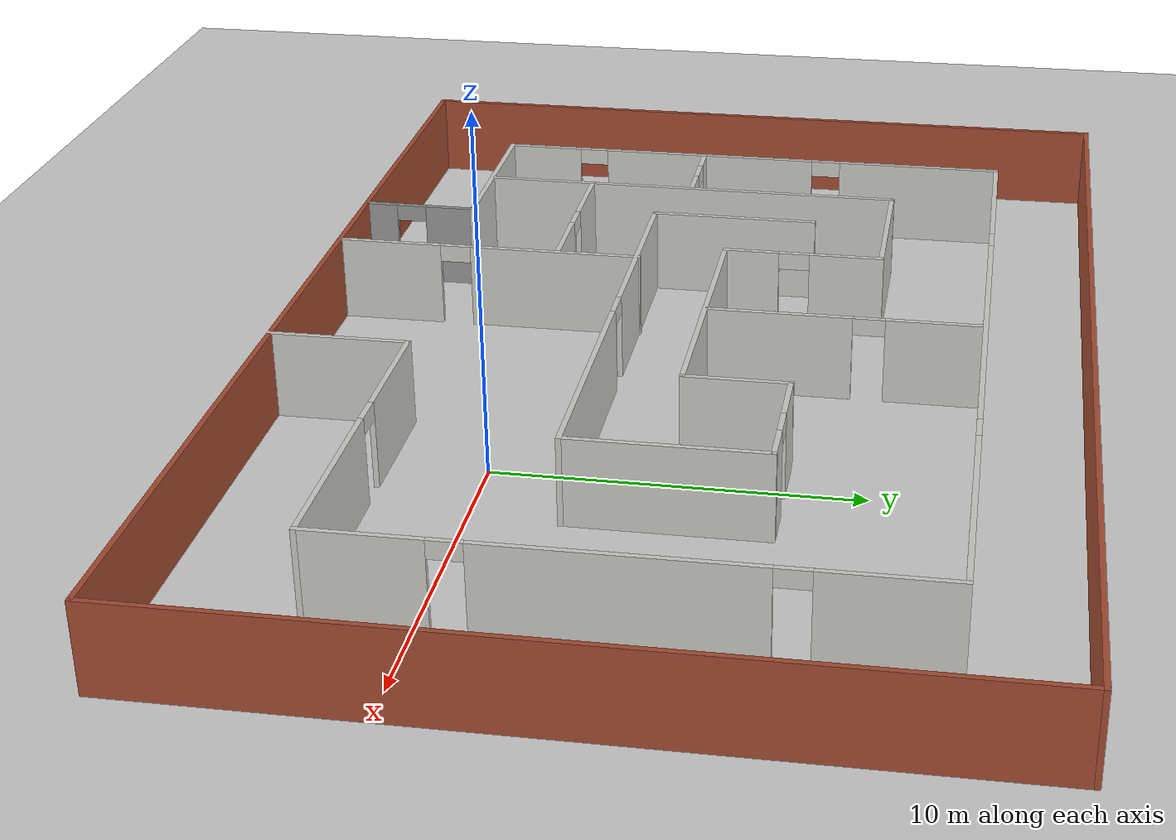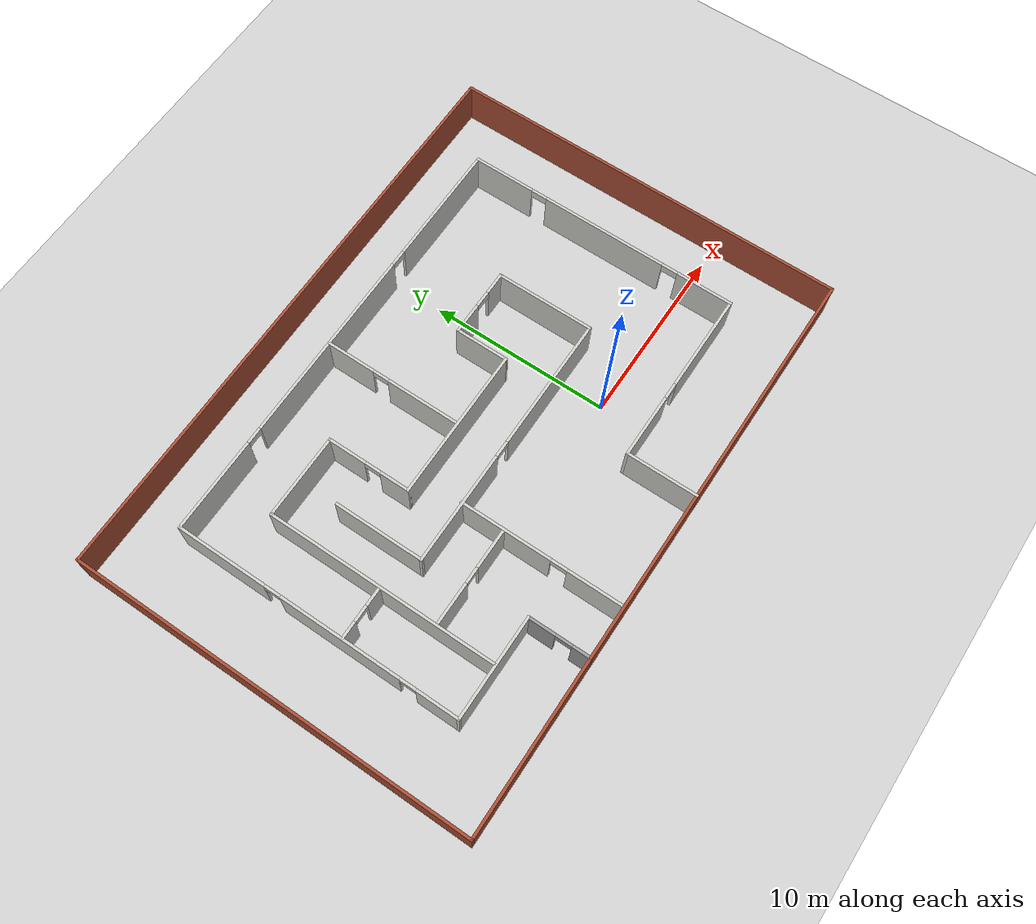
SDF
<sdf version="1.7">
 <world name="default">
  <light name="sun" type="directional">
   <pose>0 0 10 0 -0 0</pose>
   <diffuse>0.8 0.8 0.8 1</diffuse>
   <specular>0.2 0.2 0.2 1</specular>
   <attenuation>
    <range>1000</range>
    <constant>0.9</constant>
    <linear>0.01</linear>
    <quadratic>0.001</quadratic>
   </attenuation>
   <direction>-0.5 0.1 -0.9</direction>
   <spot><inner_angle>0</inner_angle><outer_angle>0</outer_angle><falloff>0</falloff></spot>
  </light>
  <model name="ground_plane">
   <static>1</static>
   <link name="link">
    <collision name="collision">
     <geometry><plane><normal>0 0 1</normal><size>100 100</size></plane></geometry>
     <surface><friction><ode><mu>100</mu><mu2>50</mu2></ode></friction></surface>
    </collision>
    <visual name="visual">
     <cast_shadows>0</cast_shadows>
     <geometry><plane><normal>0 0 1</normal><size>100 100</size></plane></geometry>
     <material>
      <script><uri>file://media/materials/scripts/gazebo.material</uri><name>Gazebo/Grey</name></script>
     </material>
    </visual>
   </link>
  </model>
  <gravity>0 0 -9.8</gravity>
  <magnetic_field>6e-06 2.3e-05 -4.2e-05</magnetic_field>
  <atmosphere type="adiabatic"/>
  <physics type="ode">
   <max_step_size>0.001</max_step_size>
   <real_time_factor>1</real_time_factor>
   <real_time_update_rate>1000</real_time_update_rate>
  </physics>
  <scene><ambient>0.4 0.4 0.4 1</ambient><background>0.7 0.7 0.7 1</background><shadows>1</shadows></scene>
  <audio><device>default</device></audio>
  <spherical_coordinates>
   <surface_model>EARTH_WGS84</surface_model>
   <latitude_deg>0</latitude_deg>
   <longitude_deg>0</longitude_deg>
   <elevation>0</elevation>
   <heading_deg>0</heading_deg>
  </spherical_coordinates>
  <model name="rooms">
   <pose>-5.06407 4.51768 0 0 -0 0</pose>
   <link name="Wall_0">
    <collision name="Wall_0_Collision">
     <geometry><box><size>23 0.15 2.5</size></box></geometry>
     <pose>0 0 1.25 0 -0 0</pose>
    </collision>
    <visual name="Wall_0_Visual">
     <pose>0 0 1.25 0 -0 0</pose>
     <geometry><box><size>23 0.15 2.5</size></box></geometry>
     <material>
      <script><uri>file://media/materials/scripts/gazebo.material</uri><name>Gazebo/Bricks</name></script>
      <ambient>1 1 1 1</ambient>
     </material>
     <meta><layer>0</layer></meta>
    </visual>
    <pose>4.75 -11.05 0 0 -0 0</pose>
   </link>
   <link name="Wall_1">
    <collision name="Wall_1_Collision">
     <geometry><box><size>22.25 0.15 2.5</size></box></geometry>
     <pose>0 0 1.25 0 -0 0</pose>
    </collision>
    <visual name="Wall_1_Visual">
     <pose>0 0 1.25 0 -0 0</pose>
     <geometry><box><size>22.25 0.15 2.5</size></box></geometry>
     <material>
      <script><uri>file://media/materials/scripts/gazebo.material</uri><name>Gazebo/Bricks</name></script>
      <ambient>1 1 1 1</ambient>
     </material>
     <meta><layer>0</layer></meta>
    </visual>
    <pose>16.175 0 0 0 -0 1.5708</pose>
   </link>
   <link name="Wall_10">
    <pose>7.65 -7.2 0 0 -0 3.14159</pose>
    <visual name="Wall_10_Visual_0">
     <pose>-2.25583 0 1.25 0 -0 0</pose>
     <geometry><box><size>5.48834 0.15 2.5</size></box></geometry>
     <material>
      <script><uri>file://media/materials/scripts/gazebo.material</uri><name>Gazebo/CeilingTiled</name></script>
      <ambient>1 1 1 1</ambient>
     </material>
     <meta><layer>0</layer></meta>
    </visual>
    <collision name="Wall_10_Collision_0">
     <geometry><box><size>5.48834 0.15 2.5</size></box></geometry>
     <pose>-2.25583 0 1.25 0 -0 0</pose>
    </collision>
    <visual name="Wall_10_Visual_1">
     <pose>3.19417 0 1.25 0 -0 0</pose>
     <geometry><box><size>3.61166 0.15 2.5</size></box></geometry>
     <material>
      <script><uri>file://media/materials/scripts/gazebo.material</uri><name>Gazebo/CeilingTiled</name></script>
      <ambient>1 1 1 1</ambient>
     </material>
     <meta><layer>0</layer></meta>
    </visual>
    <collision name="Wall_10_Collision_1">
     <geometry><box><size>3.61166 0.15 2.5</size></box></geometry>
     <pose>3.19417 0 1.25 0 -0 0</pose>
    </collision>
    <visual name="Wall_10_Visual_2">
     <pose>0.938337 0 2.25 0 -0 0</pose>
     <geometry><box><size>0.9 0.15 0.5</size></box></geometry>
     <material>
      <script><uri>file://media/materials/scripts/gazebo.material</uri><name>Gazebo/CeilingTiled</name></script>
      <ambient>1 1 1 1</ambient>
     </material>
     <meta><layer>0</layer></meta>
    </visual>
    <collision name="Wall_10_Collision_2">
     <geometry><box><size>0.9 0.15 0.5</size></box></geometry>
     <pose>0.938337 0 2.25 0 -0 0</pose>
    </collision>
   </link>
   <link name="Wall_11">
    <collision name="Wall_11_Collision">
     <geometry><box><size>4 0.15 2.5</size></box></geometry>
     <pose>0 0 1.25 0 -0 0</pose>
    </collision>
    <visual name="Wall_11_Visual">
     <pose>0 0 1.25 0 -0 0</pose>
     <geometry><box><size>4 0.15 2.5</size></box></geometry>
     <material>
      <script><uri>file://media/materials/scripts/gazebo.material</uri><name>Gazebo/CeilingTiled</name></script>
      <ambient>1 1 1 1</ambient>
     </material>
     <meta><layer>0</layer></meta>
    </visual>
    <pose>2.725 -9.125 0 0 -0 -1.5708</pose>
   </link>
   <link name="Wall_13">
    <collision name="Wall_13_Collision">
     <geometry><box><size>12.75 0.15 2.5</size></box></geometry>
     <pose>0 0 1.25 0 -0 0</pose>
    </collision>
    <visual name="Wall_13_Visual">
     <pose>0 0 1.25 0 -0 0</pose>
     <geometry><box><size>12.75 0.15 2.5</size></box></geometry>
     <material>
      <script><uri>file://media/materials/scripts/gazebo.material</uri><name>Gazebo/CeilingTiled</name></script>
      <ambient>1 1 1 1</ambient>
     </material>
     <meta><layer>0</layer></meta>
    </visual>
    <pose>-9.34711 -1.29684 0 0 -0 1.5708</pose>
   </link>
   <link name="Wall_17">
    <pose>-10.8415 -1.29175 0 0 -0 3.14159</pose>
    <visual name="Wall_17_Visual_0">
     <pose>-0.968221 0 1.25 0 -0 0</pose>
     <geometry><box><size>1.06356 0.15 2.5</size></box></geometry>
     <material>
      <script><uri>file://media/materials/scripts/gazebo.material</uri><name>Gazebo/CeilingTiled</name></script>
      <ambient>1 1 1 1</ambient>
     </material>
     <meta><layer>0</layer></meta>
    </visual>
    <collision name="Wall_17_Collision_0">
     <geometry><box><size>1.06356 0.15 2.5</size></box></geometry>
     <pose>-0.968221 0 1.25 0 -0 0</pose>
    </collision>
    <visual name="Wall_17_Visual_1">
     <pose>0.981779 0 1.25 0 -0 0</pose>
     <geometry><box><size>1.03644 0.15 2.5</size></box></geometry>
     <material>
      <script><uri>file://media/materials/scripts/gazebo.material</uri><name>Gazebo/CeilingTiled</name></script>
      <ambient>1 1 1 1</ambient>
     </material>
     <meta><layer>0</layer></meta>
    </visual>
    <collision name="Wall_17_Collision_1">
     <geometry><box><size>1.03644 0.15 2.5</size></box></geometry>
     <pose>0.981779 0 1.25 0 -0 0</pose>
    </collision>
    <visual name="Wall_17_Visual_2">
     <pose>0.013558 0 2.25 0 -0 0</pose>
     <geometry><box><size>0.9 0.15 0.5</size></box></geometry>
     <material>
      <script><uri>file://media/materials/scripts/gazebo.material</uri><name>Gazebo/CeilingTiled</name></script>
      <ambient>1 1 1 1</ambient>
     </material>
     <meta><layer>0</layer></meta>
    </visual>
    <collision name="Wall_17_Collision_2">
     <geometry><box><size>0.9 0.15 0.5</size></box></geometry>
     <pose>0.013558 0 2.25 0 -0 0</pose>
    </collision>
   </link>
   <link name="Wall_19">
    <collision name="Wall_19_Collision">
     <geometry><box><size>4.75 0.15 2.5</size></box></geometry>
     <pose>0 0 1.25 0 -0 0</pose>
    </collision>
    <visual name="Wall_19_Visual">
     <pose>0 0 1.25 0 -0 0</pose>
     <geometry><box><size>4.75 0.15 2.5</size></box></geometry>
     <material>
      <script><uri>file://media/materials/scripts/gazebo.material</uri><name>Gazebo/CeilingTiled</name></script>
      <ambient>1 1 1 1</ambient>
     </material>
     <meta><layer>0</layer></meta>
    </visual>
    <pose>-7.04711 5.00316 0 0 -0 0</pose>
   </link>
   <link name="Wall_2">
    <collision name="Wall_2_Collision">
     <geometry><box><size>32.5 0.15 2.5</size></box></geometry>
     <pose>0 0 1.25 0 -0 0</pose>
    </collision>
    <visual name="Wall_2_Visual">
     <pose>0 0 1.25 0 -0 0</pose>
     <geometry><box><size>32.5 0.15 2.5</size></box></geometry>
     <material>
      <script><uri>file://media/materials/scripts/gazebo.material</uri><name>Gazebo/Bricks</name></script>
      <ambient>1 1 1 1</ambient>
     </material>
     <meta><layer>0</layer></meta>
    </visual>
    <pose>0 11.05 0 0 -0 3.14159</pose>
   </link>
   <link name="Wall_20">
    <pose>-4.74711 2.70316 0 0 -0 -1.5708</pose>
    <visual name="Wall_20_Visual_0">
     <pose>-1.28547 0 1.25 0 -0 0</pose>
     <geometry><box><size>2.17906 0.15 2.5</size></box></geometry>
     <material>
      <script><uri>file://media/materials/scripts/gazebo.material</uri><name>Gazebo/CeilingTiled</name></script>
      <ambient>1 1 1 1</ambient>
     </material>
     <meta><layer>0</layer></meta>
    </visual>
    <collision name="Wall_20_Collision_0">
     <geometry><box><size>2.17906 0.15 2.5</size></box></geometry>
     <pose>-1.28547 0 1.25 0 -0 0</pose>
    </collision>
    <visual name="Wall_20_Visual_1">
     <pose>1.53953 0 1.25 0 -0 0</pose>
     <geometry><box><size>1.67094 0.15 2.5</size></box></geometry>
     <material>
      <script><uri>file://media/materials/scripts/gazebo.material</uri><name>Gazebo/CeilingTiled</name></script>
      <ambient>1 1 1 1</ambient>
     </material>
     <meta><layer>0</layer></meta>
    </visual>
    <collision name="Wall_20_Collision_1">
     <geometry><box><size>1.67094 0.15 2.5</size></box></geometry>
     <pose>1.53953 0 1.25 0 -0 0</pose>
    </collision>
    <visual name="Wall_20_Visual_2">
     <pose>0.254063 0 2.25 0 -0 0</pose>
     <geometry><box><size>0.9 0.15 0.5</size></box></geometry>
     <material>
      <script><uri>file://media/materials/scripts/gazebo.material</uri><name>Gazebo/CeilingTiled</name></script>
      <ambient>1 1 1 1</ambient>
     </material>
     <meta><layer>0</layer></meta>
    </visual>
    <collision name="Wall_20_Collision_2">
     <geometry><box><size>0.9 0.15 0.5</size></box></geometry>
     <pose>0.254063 0 2.25 0 -0 0</pose>
    </collision>
   </link>
   <link name="Wall_21">
    <collision name="Wall_21_Collision">
     <geometry><box><size>8.5 0.15 2.5</size></box></geometry>
     <pose>0 0 1.25 0 -0 0</pose>
    </collision>
    <visual name="Wall_21_Visual">
     <pose>0 0 1.25 0 -0 0</pose>
     <geometry><box><size>8.5 0.15 2.5</size></box></geometry>
     <material>
      <script><uri>file://media/materials/scripts/gazebo.material</uri><name>Gazebo/CeilingTiled</name></script>
      <ambient>1 1 1 1</ambient>
     </material>
     <meta><layer>0</layer></meta>
    </visual>
    <pose>-0.572112 0.40316 0 0 -0 0</pose>
   </link>
   <link name="Wall_24">
    <collision name="Wall_24_Collision">
     <geometry><box><size>3 0.15 2.5</size></box></geometry>
     <pose>0 0 1.25 0 -0 0</pose>
    </collision>
    <visual name="Wall_24_Visual">
     <pose>0 0 1.25 0 -0 0</pose>
     <geometry><box><size>3 0.15 2.5</size></box></geometry>
     <material>
      <script><uri>file://media/materials/scripts/gazebo.material</uri><name>Gazebo/CeilingTiled</name></script>
      <ambient>1 1 1 1</ambient>
     </material>
     <meta><layer>0</layer></meta>
    </visual>
    <pose>3.60289 1.82816 0 0 -0 1.5708</pose>
   </link>
   <link name="Wall_25">
    <pose>5.50109 3.25316 0 0 -0 0</pose>
    <visual name="Wall_25_Visual_0">
     <pose>-1.08978 0 1.25 0 -0 0</pose>
     <geometry><box><size>1.76684 0.15 2.5</size></box></geometry>
     <material>
      <script><uri>file://media/materials/scripts/gazebo.material</uri><name>Gazebo/CeilingTiled</name></script>
      <ambient>1 1 1 1</ambient>
     </material>
     <meta><layer>0</layer></meta>
    </visual>
    <collision name="Wall_25_Collision_0">
     <geometry><box><size>1.76684 0.15 2.5</size></box></geometry>
     <pose>-1.08978 0 1.25 0 -0 0</pose>
    </collision>
    <visual name="Wall_25_Visual_1">
     <pose>1.33342 0 1.25 0 -0 0</pose>
     <geometry><box><size>1.27955 0.15 2.5</size></box></geometry>
     <material>
      <script><uri>file://media/materials/scripts/gazebo.material</uri><name>Gazebo/CeilingTiled</name></script>
      <ambient>1 1 1 1</ambient>
     </material>
     <meta><layer>0</layer></meta>
    </visual>
    <collision name="Wall_25_Collision_1">
     <geometry><box><size>1.27955 0.15 2.5</size></box></geometry>
     <pose>1.33342 0 1.25 0 -0 0</pose>
    </collision>
    <visual name="Wall_25_Visual_2">
     <pose>0.243644 0 2.25 0 -0 0</pose>
     <geometry><box><size>0.9 0.15 0.5</size></box></geometry>
     <material>
      <script><uri>file://media/materials/scripts/gazebo.material</uri><name>Gazebo/CeilingTiled</name></script>
      <ambient>1 1 1 1</ambient>
     </material>
     <meta><layer>0</layer></meta>
    </visual>
    <collision name="Wall_25_Collision_2">
     <geometry><box><size>0.9 0.15 0.5</size></box></geometry>
     <pose>0.243644 0 2.25 0 -0 0</pose>
    </collision>
   </link>
   <link name="Wall_3">
    <collision name="Wall_3_Collision">
     <geometry><box><size>22.25 0.15 2.5</size></box></geometry>
     <pose>0 0 1.25 0 -0 0</pose>
    </collision>
    <visual name="Wall_3_Visual">
     <pose>0 0 1.25 0 -0 0</pose>
     <geometry><box><size>22.25 0.15 2.5</size></box></geometry>
     <material>
      <script><uri>file://media/materials/scripts/gazebo.material</uri><name>Gazebo/Bricks</name></script>
      <ambient>1 1 1 1</ambient>
     </material>
     <meta><layer>0</layer></meta>
    </visual>
    <pose>-16.175 0 0 0 -0 -1.5708</pose>
   </link>
   <link name="Wall_32">
    <collision name="Wall_32_Collision">
     <geometry><box><size>5.5 0.15 2.5</size></box></geometry>
     <pose>0 0 1.25 0 -0 0</pose>
    </collision>
    <visual name="Wall_32_Visual">
     <pose>0 0 1.25 0 -0 0</pose>
     <geometry><box><size>5.5 0.15 2.5</size></box></geometry>
     <material>
      <script><uri>file://media/materials/scripts/gazebo.material</uri><name>Gazebo/CeilingTiled</name></script>
      <ambient>1 1 1 1</ambient>
     </material>
     <meta><layer>0</layer></meta>
    </visual>
    <pose>7.39929 0.578161 0 0 -0 -1.5708</pose>
   </link>
   <link name="Wall_33">
    <pose>0.099286 -2.09684 0 0 -0 3.14159</pose>
    <visual name="Wall_33_Visual_0">
     <pose>-3.61755 0 1.25 0 -0 0</pose>
     <geometry><box><size>7.51489 0.15 2.5</size></box></geometry>
     <material>
      <script><uri>file://media/materials/scripts/gazebo.material</uri><name>Gazebo/CeilingTiled</name></script>
      <ambient>1 1 1 1</ambient>
     </material>
     <meta><layer>0</layer></meta>
    </visual>
    <collision name="Wall_33_Collision_0">
     <geometry><box><size>7.51489 0.15 2.5</size></box></geometry>
     <pose>-3.61755 0 1.25 0 -0 0</pose>
    </collision>
    <visual name="Wall_33_Visual_1">
     <pose>4.20744 0 1.25 0 -0 0</pose>
     <geometry><box><size>6.33511 0.15 2.5</size></box></geometry>
     <material>
      <script><uri>file://media/materials/scripts/gazebo.material</uri><name>Gazebo/CeilingTiled</name></script>
      <ambient>1 1 1 1</ambient>
     </material>
     <meta><layer>0</layer></meta>
    </visual>
    <collision name="Wall_33_Collision_1">
     <geometry><box><size>6.33511 0.15 2.5</size></box></geometry>
     <pose>4.20744 0 1.25 0 -0 0</pose>
    </collision>
    <visual name="Wall_33_Visual_2">
     <pose>0.58989 0 2.25 0 -0 0</pose>
     <geometry><box><size>0.9 0.15 0.5</size></box></geometry>
     <material>
      <script><uri>file://media/materials/scripts/gazebo.material</uri><name>Gazebo/CeilingTiled</name></script>
      <ambient>1 1 1 1</ambient>
     </material>
     <meta><layer>0</layer></meta>
    </visual>
    <collision name="Wall_33_Collision_2">
     <geometry><box><size>0.9 0.15 0.5</size></box></geometry>
     <pose>0.58989 0 2.25 0 -0 0</pose>
    </collision>
   </link>
   <link name="Wall_34">
    <collision name="Wall_34_Collision">
     <geometry><box><size>5 0.15 2.5</size></box></geometry>
     <pose>0 0 1.25 0 -0 0</pose>
    </collision>
    <visual name="Wall_34_Visual">
     <pose>0 0 1.25 0 -0 0</pose>
     <geometry><box><size>5 0.15 2.5</size></box></geometry>
     <material>
      <script><uri>file://media/materials/scripts/gazebo.material</uri><name>Gazebo/CeilingTiled</name></script>
      <ambient>1 1 1 1</ambient>
     </material>
     <meta><layer>0</layer></meta>
    </visual>
    <pose>-7.20071 0.328161 0 0 -0 1.5708</pose>
   </link>
   <link name="Wall_37">
    <pose>-3.81311 -6.47974 0 0 -0 -1.5708</pose>
    <visual name="Wall_37_Visual_0">
     <pose>-1.95566 0 1.25 0 -0 0</pose>
     <geometry><box><size>5.08868 0.15 2.5</size></box></geometry>
     <material>
      <script><uri>file://media/materials/scripts/gazebo.material</uri><name>Gazebo/CeilingTiled</name></script>
      <ambient>1 1 1 1</ambient>
     </material>
     <meta><layer>0</layer></meta>
    </visual>
    <collision name="Wall_37_Collision_0">
     <geometry><box><size>5.08868 0.15 2.5</size></box></geometry>
     <pose>-1.95566 0 1.25 0 -0 0</pose>
    </collision>
    <visual name="Wall_37_Visual_1">
     <pose>2.99434 0 1.25 0 -0 0</pose>
     <geometry><box><size>3.01132 0.15 2.5</size></box></geometry>
     <material>
      <script><uri>file://media/materials/scripts/gazebo.material</uri><name>Gazebo/CeilingTiled</name></script>
      <ambient>1 1 1 1</ambient>
     </material>
     <meta><layer>0</layer></meta>
    </visual>
    <collision name="Wall_37_Collision_1">
     <geometry><box><size>3.01132 0.15 2.5</size></box></geometry>
     <pose>2.99434 0 1.25 0 -0 0</pose>
    </collision>
    <visual name="Wall_37_Visual_2">
     <pose>1.03868 0 2.25 0 -0 0</pose>
     <geometry><box><size>0.9 0.15 0.5</size></box></geometry>
     <material>
      <script><uri>file://media/materials/scripts/gazebo.material</uri><name>Gazebo/CeilingTiled</name></script>
      <ambient>1 1 1 1</ambient>
     </material>
     <meta><layer>0</layer></meta>
    </visual>
    <collision name="Wall_37_Collision_2">
     <geometry><box><size>0.9 0.15 0.5</size></box></geometry>
     <pose>1.03868 0 2.25 0 -0 0</pose>
    </collision>
   </link>
   <link name="Wall_39">
    <pose>-6.60178 -4.45433 0 0 -0 0</pose>
    <visual name="Wall_39_Visual_0">
     <pose>-1.55312 0 1.25 0 -0 0</pose>
     <geometry><box><size>2.39376 0.15 2.5</size></box></geometry>
     <material>
      <script><uri>file://media/materials/scripts/gazebo.material</uri><name>Gazebo/CeilingTiled</name></script>
      <ambient>1 1 1 1</ambient>
     </material>
     <meta><layer>0</layer></meta>
    </visual>
    <collision name="Wall_39_Collision_0">
     <geometry><box><size>2.39376 0.15 2.5</size></box></geometry>
     <pose>-1.55312 0 1.25 0 -0 0</pose>
    </collision>
    <visual name="Wall_39_Visual_1">
     <pose>1.64688 0 1.25 0 -0 0</pose>
     <geometry><box><size>2.20625 0.15 2.5</size></box></geometry>
     <material>
      <script><uri>file://media/materials/scripts/gazebo.material</uri><name>Gazebo/CeilingTiled</name></script>
      <ambient>1 1 1 1</ambient>
     </material>
     <meta><layer>0</layer></meta>
    </visual>
    <collision name="Wall_39_Collision_1">
     <geometry><box><size>2.20625 0.15 2.5</size></box></geometry>
     <pose>1.64688 0 1.25 0 -0 0</pose>
    </collision>
    <visual name="Wall_39_Visual_2">
     <pose>0.093755 0 2.25 0 -0 0</pose>
     <geometry><box><size>0.9 0.15 0.5</size></box></geometry>
     <material>
      <script><uri>file://media/materials/scripts/gazebo.material</uri><name>Gazebo/CeilingTiled</name></script>
      <ambient>1 1 1 1</ambient>
     </material>
     <meta><layer>0</layer></meta>
    </visual>
    <collision name="Wall_39_Collision_2">
     <geometry><box><size>0.9 0.15 0.5</size></box></geometry>
     <pose>0.093755 0 2.25 0 -0 0</pose>
    </collision>
   </link>
   <link name="Wall_4">
    <collision name="Wall_4_Collision">
     <geometry><box><size>9.65 0.15 2.5</size></box></geometry>
     <pose>0 0 1.25 0 -0 0</pose>
    </collision>
    <visual name="Wall_4_Visual">
     <pose>0 0 1.25 0 -0 0</pose>
     <geometry><box><size>9.65 0.15 2.5</size></box></geometry>
     <material>
      <script><uri>file://media/materials/scripts/gazebo.material</uri><name>Gazebo/Bricks</name></script>
      <ambient>1 1 1 1</ambient>
     </material>
     <meta><layer>0</layer></meta>
    </visual>
    <pose>-11.425 -11.05 0 0 -0 0</pose>
   </link>
   <link name="Wall_43">
    <pose>-0.595834 4.29177 0 0 -0 1.5708</pose>
    <visual name="Wall_43_Visual_0">
     <pose>-1.82741 0 1.25 0 -0 0</pose>
     <geometry><box><size>4.09519 0.15 2.5</size></box></geometry>
     <material>
      <script><uri>file://media/materials/scripts/gazebo.material</uri><name>Gazebo/CeilingTiled</name></script>
      <ambient>1 1 1 1</ambient>
     </material>
     <meta><layer>0</layer></meta>
    </visual>
    <collision name="Wall_43_Collision_0">
     <geometry><box><size>4.09519 0.15 2.5</size></box></geometry>
     <pose>-1.82741 0 1.25 0 -0 0</pose>
    </collision>
    <visual name="Wall_43_Visual_1">
     <pose>2.49759 0 1.25 0 -0 0</pose>
     <geometry><box><size>2.75481 0.15 2.5</size></box></geometry>
     <material>
      <script><uri>file://media/materials/scripts/gazebo.material</uri><name>Gazebo/CeilingTiled</name></script>
      <ambient>1 1 1 1</ambient>
     </material>
     <meta><layer>0</layer></meta>
    </visual>
    <collision name="Wall_43_Collision_1">
     <geometry><box><size>2.75481 0.15 2.5</size></box></geometry>
     <pose>2.49759 0 1.25 0 -0 0</pose>
    </collision>
    <visual name="Wall_43_Visual_2">
     <pose>0.670186 0 2.25 0 -0 0</pose>
     <geometry><box><size>0.9 0.15 0.5</size></box></geometry>
     <material>
      <script><uri>file://media/materials/scripts/gazebo.material</uri><name>Gazebo/CeilingTiled</name></script>
      <ambient>1 1 1 1</ambient>
     </material>
     <meta><layer>0</layer></meta>
    </visual>
    <collision name="Wall_43_Collision_2">
     <geometry><box><size>0.9 0.15 0.5</size></box></geometry>
     <pose>0.670186 0 2.25 0 -0 0</pose>
    </collision>
   </link>
   <link name="Wall_5">
    <pose>-6.675 -9.375 0 0 -0 1.5708</pose>
    <visual name="Wall_5_Visual_0">
     <pose>-1.22613 0 1.25 0 -0 0</pose>
     <geometry><box><size>1.04774 0.15 2.5</size></box></geometry>
     <material>
      <script><uri>file://media/materials/scripts/gazebo.material</uri><name>Gazebo/Grey</name></script>
      <ambient>1 1 1 1</ambient>
     </material>
     <meta><layer>0</layer></meta>
    </visual>
    <collision name="Wall_5_Collision_0">
     <geometry><box><size>1.04774 0.15 2.5</size></box></geometry>
     <pose>-1.22613 0 1.25 0 -0 0</pose>
    </collision>
    <visual name="Wall_5_Visual_1">
     <pose>0.97387 0 1.25 0 -0 0</pose>
     <geometry><box><size>1.55226 0.15 2.5</size></box></geometry>
     <material>
      <script><uri>file://media/materials/scripts/gazebo.material</uri><name>Gazebo/Grey</name></script>
      <ambient>1 1 1 1</ambient>
     </material>
     <meta><layer>0</layer></meta>
    </visual>
    <collision name="Wall_5_Collision_1">
     <geometry><box><size>1.55226 0.15 2.5</size></box></geometry>
     <pose>0.97387 0 1.25 0 -0 0</pose>
    </collision>
    <visual name="Wall_5_Visual_2">
     <pose>-0.25226 0 2.25 0 -0 0</pose>
     <geometry><box><size>0.9 0.15 0.5</size></box></geometry>
     <material>
      <script><uri>file://media/materials/scripts/gazebo.material</uri><name>Gazebo/Grey</name></script>
      <ambient>1 1 1 1</ambient>
     </material>
     <meta><layer>0</layer></meta>
    </visual>
    <collision name="Wall_5_Collision_2">
     <geometry><box><size>0.9 0.15 0.5</size></box></geometry>
     <pose>-0.25226 0 2.25 0 -0 0</pose>
    </collision>
   </link>
   <link name="Wall_6">
    <collision name="Wall_6_Collision">
     <geometry><box><size>5.75 0.15 2.5</size></box></geometry>
     <pose>0 0 1.25 0 -0 0</pose>
    </collision>
    <visual name="Wall_6_Visual">
     <pose>0 0 1.25 0 -0 0</pose>
     <geometry><box><size>5.75 0.15 2.5</size></box></geometry>
     <material>
      <script><uri>file://media/materials/scripts/gazebo.material</uri><name>Gazebo/CeilingTiled</name></script>
      <ambient>1 1 1 1</ambient>
     </material>
     <meta><layer>0</layer></meta>
    </visual>
    <pose>-9.475 -7.7 0 0 -0 3.14159</pose>
   </link>
   <link name="Wall_7">
    <pose>-12.275 0.225001 0 0 -0 1.5708</pose>
    <visual name="Wall_7_Visual_0">
     <pose>-6.81307 0 1.25 0 -0 0</pose>
     <geometry><box><size>2.37386 0.15 2.5</size></box></geometry>
     <material>
      <script><uri>file://media/materials/scripts/gazebo.material</uri><name>Gazebo/CeilingTiled</name></script>
      <ambient>1 1 1 1</ambient>
     </material>
     <meta><layer>0</layer></meta>
    </visual>
    <collision name="Wall_7_Collision_0">
     <geometry><box><size>2.37386 0.15 2.5</size></box></geometry>
     <pose>-6.81307 0 1.25 0 -0 0</pose>
    </collision>
    <visual name="Wall_7_Visual_1">
     <pose>-1.36141 0 1.25 0 -0 0</pose>
     <geometry><box><size>6.72946 0.15 2.5</size></box></geometry>
     <material>
      <script><uri>file://media/materials/scripts/gazebo.material</uri><name>Gazebo/CeilingTiled</name></script>
      <ambient>1 1 1 1</ambient>
     </material>
     <meta><layer>0</layer></meta>
    </visual>
    <collision name="Wall_7_Collision_1">
     <geometry><box><size>6.72946 0.15 2.5</size></box></geometry>
     <pose>-1.36141 0 1.25 0 -0 0</pose>
    </collision>
    <visual name="Wall_7_Visual_2">
     <pose>5.45166 0 1.25 0 -0 0</pose>
     <geometry><box><size>5.09668 0.15 2.5</size></box></geometry>
     <material>
      <script><uri>file://media/materials/scripts/gazebo.material</uri><name>Gazebo/CeilingTiled</name></script>
      <ambient>1 1 1 1</ambient>
     </material>
     <meta><layer>0</layer></meta>
    </visual>
    <collision name="Wall_7_Collision_2">
     <geometry><box><size>5.09668 0.15 2.5</size></box></geometry>
     <pose>5.45166 0 1.25 0 -0 0</pose>
    </collision>
    <visual name="Wall_7_Visual_3">
     <pose>-5.17614 0 2.25 0 -0 0</pose>
     <geometry><box><size>0.9 0.15 0.5</size></box></geometry>
     <material>
      <script><uri>file://media/materials/scripts/gazebo.material</uri><name>Gazebo/CeilingTiled</name></script>
      <ambient>1 1 1 1</ambient>
     </material>
     <meta><layer>0</layer></meta>
    </visual>
    <collision name="Wall_7_Collision_3">
     <geometry><box><size>0.9 0.15 0.5</size></box></geometry>
     <pose>-5.17614 0 2.25 0 -0 0</pose>
    </collision>
    <visual name="Wall_7_Visual_4">
     <pose>2.45331 0 2.25 0 -0 0</pose>
     <geometry><box><size>0.9 0.15 0.5</size></box></geometry>
     <material>
      <script><uri>file://media/materials/scripts/gazebo.material</uri><name>Gazebo/CeilingTiled</name></script>
      <ambient>1 1 1 1</ambient>
     </material>
     <meta><layer>0</layer></meta>
    </visual>
    <collision name="Wall_7_Collision_4">
     <geometry><box><size>0.9 0.15 0.5</size></box></geometry>
     <pose>2.45331 0 2.25 0 -0 0</pose>
    </collision>
   </link>
   <link name="Wall_8">
    <pose>0.15 8.15 0 0 -0 0</pose>
    <visual name="Wall_8_Visual_0">
     <pose>-9.86994 0 1.25 0 -0 0</pose>
     <geometry><box><size>5.26011 0.15 2.5</size></box></geometry>
     <material>
      <script><uri>file://media/materials/scripts/gazebo.material</uri><name>Gazebo/CeilingTiled</name></script>
      <ambient>1 1 1 1</ambient>
     </material>
     <meta><layer>0</layer></meta>
    </visual>
    <collision name="Wall_8_Collision_0">
     <geometry><box><size>5.26011 0.15 2.5</size></box></geometry>
     <pose>-9.86994 0 1.25 0 -0 0</pose>
    </collision>
    <visual name="Wall_8_Visual_1">
     <pose>-0.821682 0 1.25 0 -0 0</pose>
     <geometry><box><size>11.0364 0.15 2.5</size></box></geometry>
     <material>
      <script><uri>file://media/materials/scripts/gazebo.material</uri><name>Gazebo/CeilingTiled</name></script>
      <ambient>1 1 1 1</ambient>
     </material>
     <meta><layer>0</layer></meta>
    </visual>
    <collision name="Wall_8_Collision_1">
     <geometry><box><size>11.0364 0.15 2.5</size></box></geometry>
     <pose>-0.821682 0 1.25 0 -0 0</pose>
    </collision>
    <visual name="Wall_8_Visual_2">
     <pose>9.04826 0 1.25 0 -0 0</pose>
     <geometry><box><size>6.90348 0.15 2.5</size></box></geometry>
     <material>
      <script><uri>file://media/materials/scripts/gazebo.material</uri><name>Gazebo/CeilingTiled</name></script>
      <ambient>1 1 1 1</ambient>
     </material>
     <meta><layer>0</layer></meta>
    </visual>
    <collision name="Wall_8_Collision_2">
     <geometry><box><size>6.90348 0.15 2.5</size></box></geometry>
     <pose>9.04826 0 1.25 0 -0 0</pose>
    </collision>
    <visual name="Wall_8_Visual_3">
     <pose>-6.78989 0 2.25 0 -0 0</pose>
     <geometry><box><size>0.9 0.15 0.5</size></box></geometry>
     <material>
      <script><uri>file://media/materials/scripts/gazebo.material</uri><name>Gazebo/CeilingTiled</name></script>
      <ambient>1 1 1 1</ambient>
     </material>
     <meta><layer>0</layer></meta>
    </visual>
    <collision name="Wall_8_Collision_3">
     <geometry><box><size>0.9 0.15 0.5</size></box></geometry>
     <pose>-6.78989 0 2.25 0 -0 0</pose>
    </collision>
    <visual name="Wall_8_Visual_4">
     <pose>5.14652 0 2.25 0 -0 0</pose>
     <geometry><box><size>0.9 0.15 0.5</size></box></geometry>
     <material>
      <script><uri>file://media/materials/scripts/gazebo.material</uri><name>Gazebo/CeilingTiled</name></script>
      <ambient>1 1 1 1</ambient>
     </material>
     <meta><layer>0</layer></meta>
    </visual>
    <collision name="Wall_8_Collision_4">
     <geometry><box><size>0.9 0.15 0.5</size></box></geometry>
     <pose>5.14652 0 2.25 0 -0 0</pose>
    </collision>
   </link>
   <link name="Wall_9">
    <pose>12.575 0.475001 0 0 -0 -1.5708</pose>
    <visual name="Wall_9_Visual_0">
     <pose>-6.00152 0 1.25 0 -0 0</pose>
     <geometry><box><size>3.49696 0.15 2.5</size></box></geometry>
     <material>
      <script><uri>file://media/materials/scripts/gazebo.material</uri><name>Gazebo/CeilingTiled</name></script>
      <ambient>1 1 1 1</ambient>
     </material>
     <meta><layer>0</layer></meta>
    </visual>
    <collision name="Wall_9_Collision_0">
     <geometry><box><size>3.49696 0.15 2.5</size></box></geometry>
     <pose>-6.00152 0 1.25 0 -0 0</pose>
    </collision>
    <visual name="Wall_9_Visual_1">
     <pose>0.165508 0 1.25 0 -0 0</pose>
     <geometry><box><size>7.0371 0.15 2.5</size></box></geometry>
     <material>
      <script><uri>file://media/materials/scripts/gazebo.material</uri><name>Gazebo/CeilingTiled</name></script>
      <ambient>1 1 1 1</ambient>
     </material>
     <meta><layer>0</layer></meta>
    </visual>
    <collision name="Wall_9_Collision_1">
     <geometry><box><size>7.0371 0.15 2.5</size></box></geometry>
     <pose>0.165508 0 1.25 0 -0 0</pose>
    </collision>
    <visual name="Wall_9_Visual_2">
     <pose>6.16703 0 1.25 0 -0 0</pose>
     <geometry><box><size>3.16594 0.15 2.5</size></box></geometry>
     <material>
      <script><uri>file://media/materials/scripts/gazebo.material</uri><name>Gazebo/CeilingTiled</name></script>
      <ambient>1 1 1 1</ambient>
     </material>
     <meta><layer>0</layer></meta>
    </visual>
    <collision name="Wall_9_Collision_2">
     <geometry><box><size>3.16594 0.15 2.5</size></box></geometry>
     <pose>6.16703 0 1.25 0 -0 0</pose>
    </collision>
    <visual name="Wall_9_Visual_3">
     <pose>-3.80304 0 2.25 0 -0 0</pose>
     <geometry><box><size>0.9 0.15 0.5</size></box></geometry>
     <material>
      <script><uri>file://media/materials/scripts/gazebo.material</uri><name>Gazebo/CeilingTiled</name></script>
      <ambient>1 1 1 1</ambient>
     </material>
     <meta><layer>0</layer></meta>
    </visual>
    <collision name="Wall_9_Collision_3">
     <geometry><box><size>0.9 0.15 0.5</size></box></geometry>
     <pose>-3.80304 0 2.25 0 -0 0</pose>
    </collision>
    <visual name="Wall_9_Visual_4">
     <pose>4.13406 0 2.25 0 -0 0</pose>
     <geometry><box><size>0.9 0.15 0.5</size></box></geometry>
     <material>
      <script><uri>file://media/materials/scripts/gazebo.material</uri><name>Gazebo/CeilingTiled</name></script>
      <ambient>1 1 1 1</ambient>
     </material>
     <meta><layer>0</layer></meta>
    </visual>
    <collision name="Wall_9_Collision_4">
     <geometry><box><size>0.9 0.15 0.5</size></box></geometry>
     <pose>4.13406 0 2.25 0 -0 0</pose>
    </collision>
   </link>
   <static>1</static>
  </model>
 </world>
</sdf>
